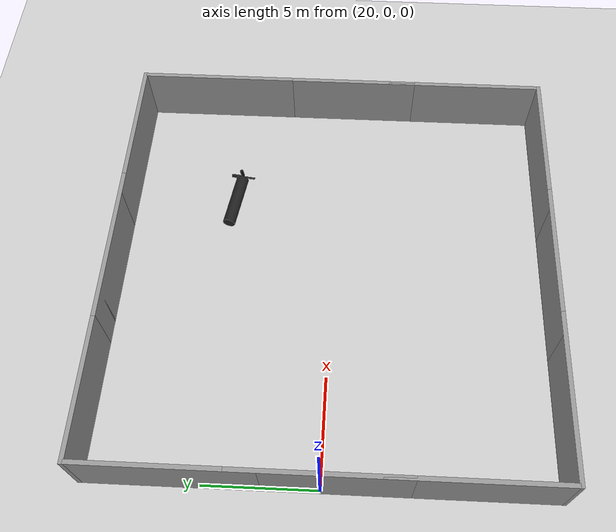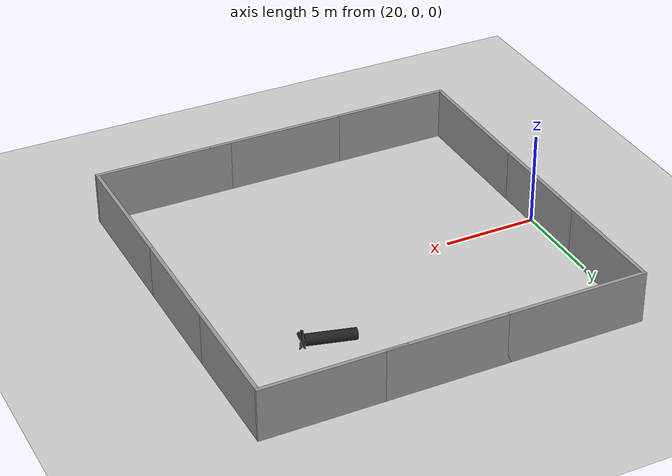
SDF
<sdf version="1.6">
 <world name="default">
  <light name="sun" type="directional">
   <pose>0 0 10 0 -0 0</pose>
   <diffuse>0.8 0.8 0.8 1</diffuse>
   <specular>0.2 0.2 0.2 1</specular>
   <attenuation>
    <range>1000</range>
    <constant>0.9</constant>
    <linear>0.01</linear>
    <quadratic>0.001</quadratic>
   </attenuation>
   <direction>-0.5 0.1 -0.9</direction>
  </light>
  <model name="ground_plane">
   <static>1</static>
   <link name="link">
    <collision name="collision">
     <geometry><plane><normal>0 0 1</normal><size>100 100</size></plane></geometry>
     <surface><friction><ode><mu>100</mu><mu2>50</mu2></ode></friction></surface>
    </collision>
    <visual name="visual">
     <cast_shadows>0</cast_shadows>
     <geometry><plane><normal>0 0 1</normal><size>100 100</size></plane></geometry>
     <material>
      <script><uri>file://media/materials/scripts/gazebo.material</uri><name>Gazebo/Grey</name></script>
     </material>
    </visual>
   </link>
  </model>
  <gravity>0 0 -9.8</gravity>
  <magnetic_field>6e-06 2.3e-05 -4.2e-05</magnetic_field>
  <atmosphere type="adiabatic"/>
  <physics name="default_physics" default="0" type="ode">
   <max_step_size>0.001</max_step_size>
   <real_time_factor>1</real_time_factor>
   <real_time_update_rate>1000</real_time_update_rate>
  </physics>
  <scene><ambient>0.4 0.4 0.4 1</ambient><background>0.7 0.7 0.7 1</background><shadows>1</shadows></scene>
  <audio><device>default</device></audio>
  <spherical_coordinates>
   <surface_model>EARTH_WGS84</surface_model>
   <latitude_deg>0</latitude_deg>
   <longitude_deg>0</longitude_deg>
   <elevation>0</elevation>
   <heading_deg>0</heading_deg>
  </spherical_coordinates>
  <model name="grey_wall">
   <static>1</static>
   <link name="link">
    <pose>0 0 1.4 0 -0 0</pose>
    <collision name="collision"><geometry><box><size>7.5 0.2 2.8</size></box></geometry></collision>
    <visual name="visual">
     <cast_shadows>0</cast_shadows>
     <geometry><box><size>7.5 0.2 2.8</size></box></geometry>
     <material>
      <script>
       <uri>model://grey_wall/materials/scripts</uri>
       <uri>model://grey_wall/materials/textures</uri>
       <name>vrc/grey_wall</name>
      </script>
     </material>
    </visual>
   </link>
   <pose>40 -6.2 0 0 0 -1.5708</pose>
  </model>
  <model name="grey_wall_clone">
   <static>1</static>
   <link name="link">
    <pose>0 0 1.4 0 -0 0</pose>
    <collision name="collision"><geometry><box><size>7.5 0.2 2.8</size></box></geometry></collision>
    <visual name="visual">
     <cast_shadows>0</cast_shadows>
     <geometry><box><size>7.5 0.2 2.8</size></box></geometry>
     <material>
      <script>
       <uri>model://grey_wall/materials/scripts</uri>
       <uri>model://grey_wall/materials/textures</uri>
       <name>vrc/grey_wall</name>
      </script>
     </material>
    </visual>
   </link>
   <pose>40 6.2 0 0 0 -1.5708</pose>
  </model>
  <model name="grey_wall_clone_0">
   <static>1</static>
   <link name="link">
    <pose>0 0 1.4 0 -0 0</pose>
    <collision name="collision"><geometry><box><size>7.5 0.2 2.8</size></box></geometry></collision>
    <visual name="visual">
     <cast_shadows>0</cast_shadows>
     <geometry><box><size>7.5 0.2 2.8</size></box></geometry>
     <material>
      <script>
       <uri>model://grey_wall/materials/scripts</uri>
       <uri>model://grey_wall/materials/textures</uri>
       <name>vrc/grey_wall</name>
      </script>
     </material>
    </visual>
   </link>
   <pose>20 -6.2 0 0 0 -1.5708</pose>
  </model>
  <model name="grey_wall_clone_1">
   <static>1</static>
   <link name="link">
    <pose>0 0 1.4 0 -0 0</pose>
    <collision name="collision"><geometry><box><size>7.5 0.2 2.8</size></box></geometry></collision>
    <visual name="visual">
     <cast_shadows>0</cast_shadows>
     <geometry><box><size>7.5 0.2 2.8</size></box></geometry>
     <material>
      <script>
       <uri>model://grey_wall/materials/scripts</uri>
       <uri>model://grey_wall/materials/textures</uri>
       <name>vrc/grey_wall</name>
      </script>
     </material>
    </visual>
   </link>
   <pose>20 6.2 0 0 0 -1.5708</pose>
  </model>
  <model name="grey_wall_clone_2">
   <static>1</static>
   <link name="link">
    <pose>0 0 1.4 0 -0 0</pose>
    <collision name="collision"><geometry><box><size>7.5 0.2 2.8</size></box></geometry></collision>
    <visual name="visual">
     <cast_shadows>0</cast_shadows>
     <geometry><box><size>7.5 0.2 2.8</size></box></geometry>
     <material>
      <script>
       <uri>model://grey_wall/materials/scripts</uri>
       <uri>model://grey_wall/materials/textures</uri>
       <name>vrc/grey_wall</name>
      </script>
     </material>
    </visual>
   </link>
   <pose>30 -10 0 0 -0 3.14159</pose>
  </model>
  <model name="grey_wall_clone_3">
   <static>1</static>
   <link name="link">
    <pose>0 0 1.4 0 -0 0</pose>
    <collision name="collision"><geometry><box><size>7.5 0.2 2.8</size></box></geometry></collision>
    <visual name="visual">
     <cast_shadows>0</cast_shadows>
     <geometry><box><size>7.5 0.2 2.8</size></box></geometry>
     <material>
      <script>
       <uri>model://grey_wall/materials/scripts</uri>
       <uri>model://grey_wall/materials/textures</uri>
       <name>vrc/grey_wall</name>
      </script>
     </material>
    </visual>
   </link>
   <pose>30 10 0 0 -0 4e-06</pose>
  </model>
  <model name="grey_wall_clone_4">
   <static>1</static>
   <link name="link">
    <pose>0 0 1.4 0 -0 0</pose>
    <collision name="collision"><geometry><box><size>7.5 0.2 2.8</size></box></geometry></collision>
    <visual name="visual">
     <cast_shadows>0</cast_shadows>
     <geometry><box><size>7.5 0.2 2.8</size></box></geometry>
     <material>
      <script>
       <uri>model://grey_wall/materials/scripts</uri>
       <uri>model://grey_wall/materials/textures</uri>
       <name>vrc/grey_wall</name>
      </script>
     </material>
    </visual>
   </link>
   <pose>23.65 10 0 0 -0 3.14159</pose>
  </model>
  <model name="grey_wall_clone_5">
   <static>1</static>
   <link name="link">
    <pose>0 0 1.4 0 -0 0</pose>
    <collision name="collision"><geometry><box><size>7.5 0.2 2.8</size></box></geometry></collision>
    <visual name="visual">
     <cast_shadows>0</cast_shadows>
     <geometry><box><size>7.5 0.2 2.8</size></box></geometry>
     <material>
      <script>
       <uri>model://grey_wall/materials/scripts</uri>
       <uri>model://grey_wall/materials/textures</uri>
       <name>vrc/grey_wall</name>
      </script>
     </material>
    </visual>
   </link>
   <pose>23.65 -10 0 0 -0 3.14159</pose>
  </model>
  <model name="grey_wall_clone_6">
   <static>1</static>
   <link name="link">
    <pose>0 0 1.4 0 -0 0</pose>
    <collision name="collision"><geometry><box><size>7.5 0.2 2.8</size></box></geometry></collision>
    <visual name="visual">
     <cast_shadows>0</cast_shadows>
     <geometry><box><size>7.5 0.2 2.8</size></box></geometry>
     <material>
      <script>
       <uri>model://grey_wall/materials/scripts</uri>
       <uri>model://grey_wall/materials/textures</uri>
       <name>vrc/grey_wall</name>
      </script>
     </material>
    </visual>
   </link>
   <pose>20 0 0 0 0 -1.5708</pose>
  </model>
  <model name="grey_wall_clone_7">
   <static>1</static>
   <link name="link">
    <pose>0 0 1.4 0 -0 0</pose>
    <collision name="collision"><geometry><box><size>7.5 0.2 2.8</size></box></geometry></collision>
    <visual name="visual">
     <cast_shadows>0</cast_shadows>
     <geometry><box><size>7.5 0.2 2.8</size></box></geometry>
     <material>
      <script>
       <uri>model://grey_wall/materials/scripts</uri>
       <uri>model://grey_wall/materials/textures</uri>
       <name>vrc/grey_wall</name>
      </script>
     </material>
    </visual>
   </link>
   <pose>36.35 10 0 0 -0 3.14159</pose>
  </model>
  <model name="grey_wall_clone_8">
   <static>1</static>
   <link name="link">
    <pose>0 0 1.4 0 -0 0</pose>
    <collision name="collision"><geometry><box><size>7.5 0.2 2.8</size></box></geometry></collision>
    <visual name="visual">
     <cast_shadows>0</cast_shadows>
     <geometry><box><size>7.5 0.2 2.8</size></box></geometry>
     <material>
      <script>
       <uri>model://grey_wall/materials/scripts</uri>
       <uri>model://grey_wall/materials/textures</uri>
       <name>vrc/grey_wall</name>
      </script>
     </material>
    </visual>
   </link>
   <pose>40 0 0 0 0 -1.5708</pose>
  </model>
  <model name="grey_wall_clone_9">
   <static>1</static>
   <link name="link">
    <pose>0 0 1.4 0 -0 0</pose>
    <collision name="collision"><geometry><box><size>7.5 0.2 2.8</size></box></geometry></collision>
    <visual name="visual">
     <cast_shadows>0</cast_shadows>
     <geometry><box><size>7.5 0.2 2.8</size></box></geometry>
     <material>
      <script>
       <uri>model://grey_wall/materials/scripts</uri>
       <uri>model://grey_wall/materials/textures</uri>
       <name>vrc/grey_wall</name>
      </script>
     </material>
    </visual>
   </link>
   <pose>36.35 -10 0 0 -0 3.14159</pose>
  </model>
  <model name="submarine_sinking">
   <pose>35.1181 4.79537 0.449062 -0.80131 1.48027 -0.97358</pose>
   <link name="body">
    <pose>0 0 -1.07935 0 -0 0</pose>
    <inertial>
     <mass>1102.7</mass>
     <inertia><ixx>645.998</ixx><ixy>0</ixy><ixz>0</ixz><iyy>645.998</iyy><iyz>0</iyz><izz>49.6215</izz></inertia>
    </inertial>
    <visual name="body_visual">
     <geometry><cylinder><radius>0.3</radius><length>2.6</length></cylinder></geometry>
     <material>
      <script><uri>file://media/materials/scripts/gazebo.material</uri><name>Gazebo/Black</name></script>
     </material>
    </visual>
    <collision name="body_collision">
     <geometry><cylinder><radius>0.3</radius><length>2.6</length></cylinder></geometry>
    </collision>
    <visual name="spacer_visual">
     <pose>0 0 1.37855 0 -0 0</pose>
     <geometry><cylinder><radius>0.0933402</radius><length>0.127211</length></cylinder></geometry>
     <material>
      <script><uri>file://media/materials/scripts/gazebo.material</uri><name>Gazebo/Black</name></script>
     </material>
    </visual>
   </link>
   <link name="propeller">
    <pose>0 0 0.3455 3.14159 -0 0</pose>
    <inertial>
     <mass>25.2312</mass>
     <inertia><ixx>0.531907</ixx><ixy>0</ixy><ixz>0</ixz><iyy>0.531907</iyy><iyz>0</iyz><izz>1.0513</izz></inertia>
    </inertial>
    <visual name="blade1_visual">
     <pose>0.34334 0 0 0.785398 -0 0</pose>
     <geometry><box><size>0.5 0.154178 0.05455</size></box></geometry>
     <material>
      <script><uri>file://media/materials/scripts/gazebo.material</uri><name>Gazebo/Black</name></script>
     </material>
    </visual>
    <collision name="blade1_collision">
     <pose>0.34334 0 0 0.785398 -0 0</pose>
     <geometry><box><size>0.5 0.154178 0.05455</size></box></geometry>
    </collision>
    <visual name="blade2_visual">
     <pose>0 0.34334 0 0.785398 0 1.5708</pose>
     <geometry><box><size>0.5 0.154178 0.05455</size></box></geometry>
     <material>
      <script><uri>file://media/materials/scripts/gazebo.material</uri><name>Gazebo/Black</name></script>
     </material>
    </visual>
    <collision name="blade2_collision">
     <pose>0 0.34334 0 0.785398 0 1.5708</pose>
     <geometry><box><size>0.5 0.154178 0.05455</size></box></geometry>
    </collision>
    <visual name="blade3_visual">
     <pose>-0.34334 -0 0 -0.785398 0 0</pose>
     <geometry><box><size>0.5 0.154178 0.05455</size></box></geometry>
     <material>
      <script><uri>file://media/materials/scripts/gazebo.material</uri><name>Gazebo/Black</name></script>
     </material>
    </visual>
    <collision name="blade3_collision">
     <pose>-0.34334 -0 0 -0.785398 0 0</pose>
     <geometry><box><size>0.5 0.154178 0.05455</size></box></geometry>
    </collision>
    <visual name="blade4_visual">
     <pose>-0 -0.34334 0 -0.785398 -0 1.5708</pose>
     <geometry><box><size>0.5 0.154178 0.05455</size></box></geometry>
     <material>
      <script><uri>file://media/materials/scripts/gazebo.material</uri><name>Gazebo/Black</name></script>
     </material>
    </visual>
    <collision name="blade4_collision">
     <pose>-0 -0.34334 0 -0.785398 -0 1.5708</pose>
     <geometry><box><size>0.5 0.154178 0.05455</size></box></geometry>
    </collision>
   </link>
   <joint name="spinning_joint" type="revolute">
    <parent>body</parent>
    <child>propeller</child>
    <axis>
     <xyz>0 0 1</xyz>
     <use_parent_model_frame>1</use_parent_model_frame>
     <limit><lower>-1e+12</lower><upper>1e+12</upper><effort>-1</effort><velocity>-1</velocity></limit>
     <dynamics><spring_reference>0</spring_reference><spring_stiffness>0</spring_stiffness></dynamics>
    </axis>
   </joint>
   <plugin name="buoyancy" filename="libBuoyancyPlugin.so"><fluid_density>999.1026</fluid_density></plugin>
  </model>
  <model name="unit_cylinder">
   <pose>30.0093 -0.005022 1.58177 1e-06 1e-06 -0.00016</pose>
   <link name="link">
    <inertial>
     <mass>1</mass>
     <inertia><ixx>0.145833</ixx><ixy>0</ixy><ixz>0</ixz><iyy>0.145833</iyy><iyz>0</iyz><izz>0.125</izz></inertia>
    </inertial>
    <collision name="collision">
     <geometry><cylinder><radius>0.00220403</radius><length>0.030257</length></cylinder></geometry>
    </collision>
    <visual name="visual">
     <geometry><cylinder><radius>0.00220403</radius><length>0.030257</length></cylinder></geometry>
     <material>
      <script><name>Gazebo/Grey</name><uri>file://media/materials/scripts/gazebo.material</uri></script>
     </material>
    </visual>
   </link>
  </model>
 </world>
</sdf>
